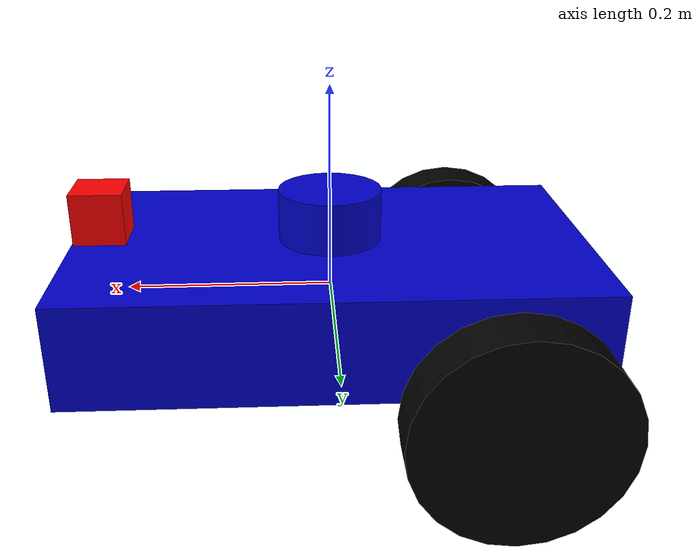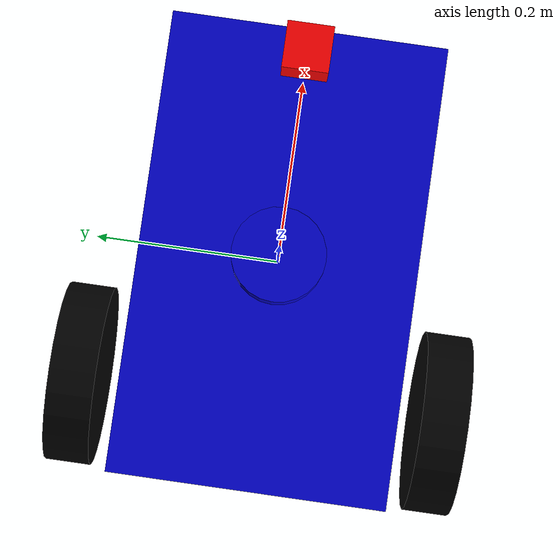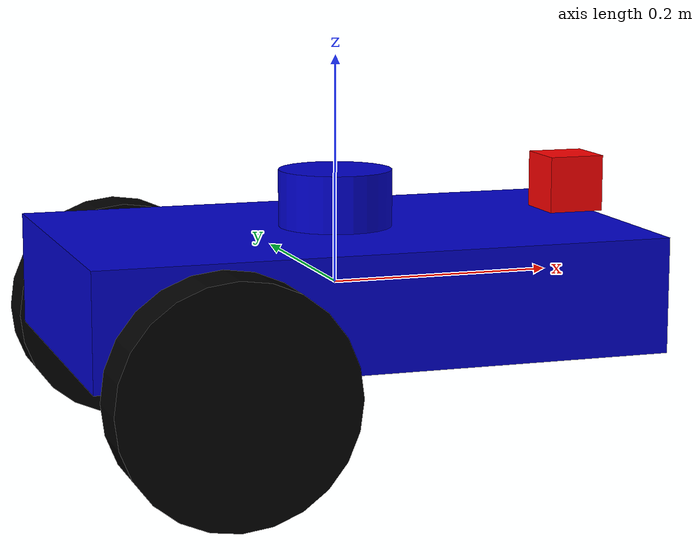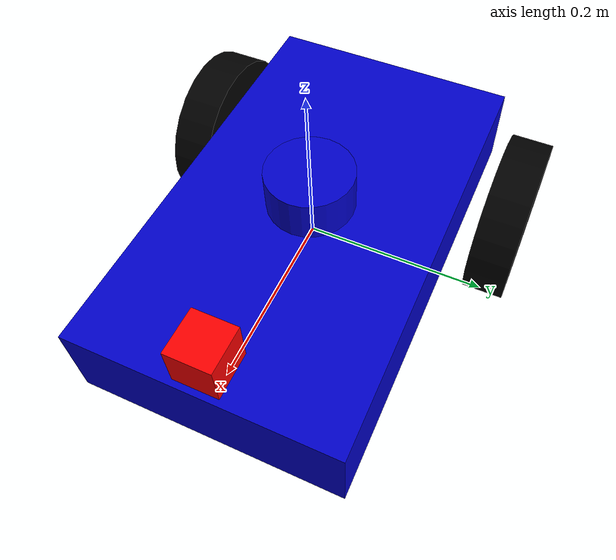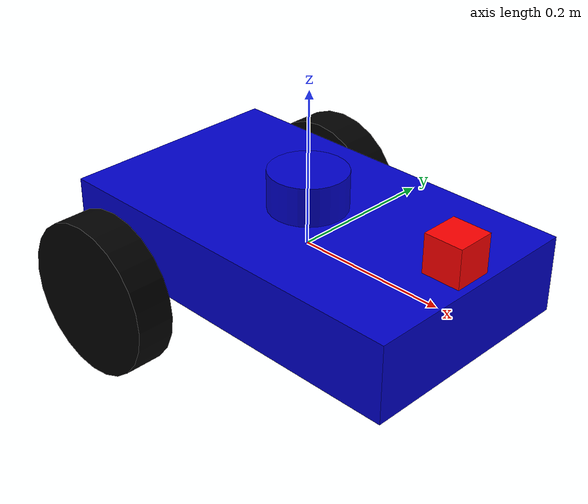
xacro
<?xml version="1.0"?>
<robot name="autonomous_robot" xmlns:xacro="http://www.ros.org/wiki/xacro">
    <xacro:include filename="$(find autonomous_robot)/urdf/base.xacro" />
    <xacro:include filename="$(find autonomous_robot)/urdf/camera.xacro" />
    <xacro:include filename="$(find autonomous_robot)/urdf/arm.xacro" />

    <xacro:base_robot />
    <xacro:camera_sensor parent="base_link" />
    <xacro:arm parent="base_link" />
</robot>

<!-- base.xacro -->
<robot xmlns:xacro="http://www.ros.org/wiki/xacro">
    <xacro:macro name="base_robot">
        <link name="base_link">
            <visual>
                <geometry>
                    <box size="0.5 0.3 0.1" />
                </geometry>
                <material name="blue">
                    <color rgba="0 0 0.8 1" />
                </material>
            </visual>
            <collision>
                <geometry>
                    <box size="0.5 0.3 0.1" />
                </geometry>
            </collision>
            <inertial>
                <mass value="5" />
                <inertia ixx="0.0395" ixy="0" ixz="0" iyy="0.086" iyz="0" izz="0.1226" />
            </inertial>
        </link>

        <link name="wheel_left">
            <visual>
                <geometry>
                    <cylinder radius="0.1" length="0.05" />
                </geometry>
                <material name="black">
                    <color rgba="0 0 0 1" />
                </material>
            </visual>
            <collision>
                <geometry>
                    <cylinder radius="0.1" length="0.05" />
                </geometry>
            </collision>
            <inertial>
                <mass value="0.5" />
                <inertia ixx="0.00125" ixy="0" ixz="0" iyy="0.00125" iyz="0" izz="0.0025" />
            </inertial>
        </link>

        <joint name="base_to_wheel_left" type="continuous">
            <parent link="base_link" />
            <child link="wheel_left" />
            <origin xyz="-0.15 0.2 -0.05" rpy="${pi/2} 0 0" />
            <axis xyz="0 0 1" />
        </joint>

        <link name="wheel_right">
            <visual>
                <geometry>
                    <cylinder radius="0.1" length="0.05" />
                </geometry>
                <material name="black">
                    <color rgba="0 0 0 1" />
                </material>
            </visual>
            <collision>
                <geometry>
                    <cylinder radius="0.1" length="0.05" />
                </geometry>
            </collision>
            <inertial>
                <mass value="0.5" />
                <inertia ixx="0.00125" ixy="0" ixz="0" iyy="0.00125" iyz="0" izz="0.0025" />
            </inertial>
        </link>

        <joint name="base_to_wheel_right" type="continuous">
            <parent link="base_link" />
            <child link="wheel_right" />
            <origin xyz="-0.15 -0.2 -0.05" rpy="${pi/2} 0 0" />
            <axis xyz="0 0 1" />
        </joint>
    </xacro:macro>
</robot>

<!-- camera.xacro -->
<robot xmlns:xacro="http://www.ros.org/wiki/xacro">
    <xacro:macro name="camera_sensor" params="parent">
        <joint name="${parent}_to_camera" type="fixed">
            <parent link="${parent}" />
            <child link="camera_link" />
            <origin xyz="0.22 0 0.08" rpy="0 0 0" />
        </joint>

        <link name="camera_link">
            <visual>
                <geometry>
                    <box size="0.05 0.05 0.05" />
                </geometry>
                <material name="red">
                    <color rgba="1 0 0 1" />
                </material>
            </visual>
            <collision>
                <geometry>
                    <box size="0.05 0.05 0.05" />
                </geometry>
            </collision>
            <inertial>
                <mass value="0.1" />
                <inertia ixx="0.000042" ixy="0" ixz="0" iyy="0.000042" iyz="0" izz="0.000042" />
            </inertial>
        </link>

        <gazebo reference="camera_link">
            <sensor type="camera" name="camera1">
                <update_rate>30.0</update_rate>
                <camera name="head">
                    <horizontal_fov>1.3962634</horizontal_fov>
                    <image>
                        <width>800</width>
                        <height>600</height>
                        <format>R8G8B8</format>
                    </image>
                    <clip>
                        <near>0.02</near>
                        <far>300</far>
                    </clip>
                    <noise>
                        <type>gaussian</type>
                        <mean>0.0</mean>
                        <stddev>0.007</stddev>
                    </noise>
                </camera>
                <plugin name="camera_controller" filename="libgazebo_ros_camera.so">
                    <alwaysOn>true</alwaysOn>
                    <updateRate>0.0</updateRate>
                    <cameraName>camera</cameraName>
                    <imageTopicName>image_raw</imageTopicName>
                    <cameraInfoTopicName>camera_info</cameraInfoTopicName>
                    <frameName>camera_link</frameName>
                    <hackBaseline>0.07</hackBaseline>
                    <distortionK1>0.0</distortionK1>
                    <distortionK2>0.0</distortionK2>
                    <distortionK3>0.0</distortionK3>
                    <distortionT1>0.0</distortionT1>
                    <distortionT2>0.0</distortionT2>
                </plugin>
            </sensor>
        </gazebo>
    </xacro:macro>
</robot>

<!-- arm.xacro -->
<robot xmlns:xacro="http://www.ros.org/wiki/xacro">
    <xacro:macro name="arm" params="parent">
        <!-- 机械臂基座链接 -->
        <link name="arm_base_link">
            <visual>
                <geometry>
                    <cylinder length="0.1" radius="0.05" />
                </geometry>
                <material name="blue">
                    <color rgba="0 0 0.8 1" />
                </material>
            </visual>
        </link>

        <!-- 将机械臂基座连接到父链接 -->
        <joint name="${parent}_to_arm_base" type="fixed">
            <parent link="${parent}" />
            <child link="arm_base_link" />
            <origin xyz="0 0 0.05" rpy="0 0 0" />
        </joint>

        <!-- 在这里可以添加更多的机械臂部件 -->
    </xacro:macro>
</robot>
